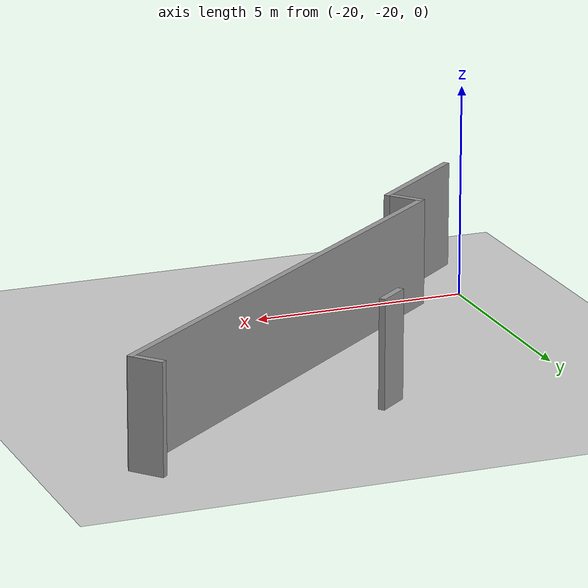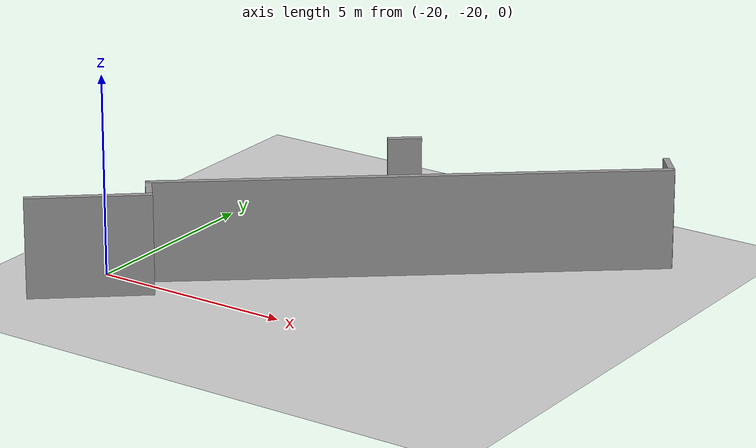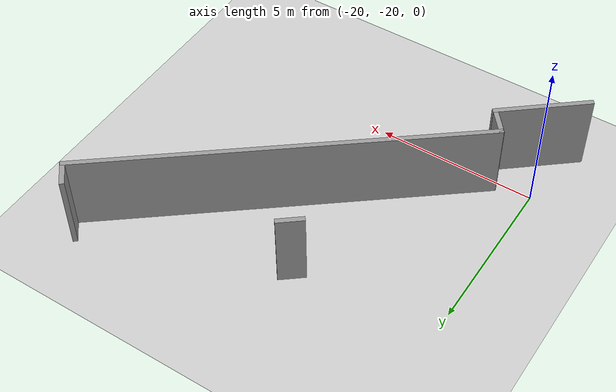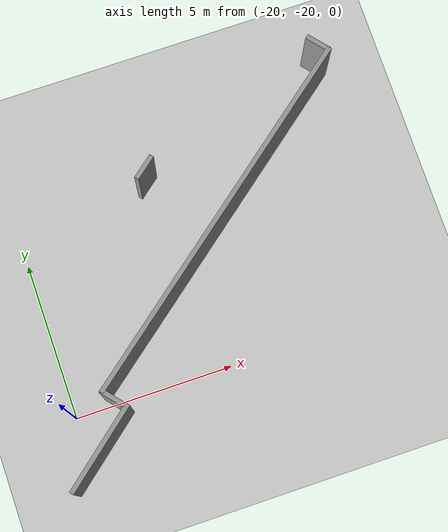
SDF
<sdf version="1.6">
 <world name="default">
  <model name="ground_plane">
   <static>1</static>
   <link name="link">
    <collision name="collision">
     <geometry><plane><normal>0 0 1</normal><size>100 100</size></plane></geometry>
     <surface>
      <contact><collide_bitmask>65535</collide_bitmask></contact>
      <friction><ode><mu>100</mu><mu2>50</mu2></ode></friction>
     </surface>
    </collision>
    <visual name="visual">
     <cast_shadows>0</cast_shadows>
     <geometry><plane><normal>0 0 1</normal><size>100 100</size></plane></geometry>
     <material>
      <script><uri>file://media/materials/scripts/gazebo.material</uri><name>Gazebo/Grey</name></script>
     </material>
    </visual>
   </link>
  </model>
  <model name="wall(0.83)_0_clone_clone">
   <link name="Wall_0">
    <inertial>
     <mass>1</mass>
     <inertia><ixx>1</ixx><ixy>0</ixy><ixz>0</ixz><iyy>1</iyy><iyz>0</iyz><izz>1</izz></inertia>
    </inertial>
    <visual name="Wall_0_Visual">
     <pose>0 0 1.25 0 -0 0</pose>
     <geometry><box><size>0.83 0.15 2.5</size></box></geometry>
     <material>
      <script><uri>file://media/materials/scripts/gazebo.material</uri><name>Gazebo/Grey</name></script>
      <ambient>1 1 1 1</ambient>
      <shader type="vertex"><normal_map>__default__</normal_map></shader>
      <diffuse>0.7 0.7 0.7 1</diffuse>
      <specular>0.01 0.01 0.01 1</specular>
      <emissive>0 0 0 1</emissive>
     </material>
     <meta><layer>0</layer></meta>
    </visual>
    <collision name="Wall_0_Collision">
     <pose>0 0 1.25 0 -0 0</pose>
     <geometry><box><size>2.25 0.15 2.5</size></box></geometry>
     <surface>
      <friction>
       <ode><mu>1</mu><mu2>1</mu2><fdir1>0 0 0</fdir1><slip1>0</slip1><slip2>0</slip2></ode>
       <torsional>
        <coefficient>1</coefficient>
        <patch_radius>0</patch_radius>
        <surface_radius>0</surface_radius>
        <use_patch_radius>1</use_patch_radius>
        <ode><slip>0</slip></ode>
       </torsional>
      </friction>
      <bounce><restitution_coefficient>0</restitution_coefficient><threshold>1e+06</threshold></bounce>
      <contact>
       <collide_without_contact>0</collide_without_contact>
       <collide_without_contact_bitmask>1</collide_without_contact_bitmask>
       <collide_bitmask>1</collide_bitmask>
       <ode>
        <soft_cfm>0</soft_cfm>
        <soft_erp>0.2</soft_erp>
        <kp>1e+13</kp>
        <kd>1</kd>
        <max_vel>0.01</max_vel>
        <min_depth>0</min_depth>
       </ode>
       <bullet>
        <split_impulse>1</split_impulse>
        <split_impulse_penetration_threshold>-0.01</split_impulse_penetration_threshold>
        <soft_cfm>0</soft_cfm>
        <soft_erp>0.2</soft_erp>
        <kp>1e+13</kp>
        <kd>1</kd>
       </bullet>
      </contact>
     </surface>
    </collision>
   </link>
   <static>1</static>
   <pose>-9.43003 -11.7738 0 0 -0 2.26983</pose>
  </model>
  <model name="wall(12.5)_clone">
   <link name="Wall_106">
    <pose>-2.9353 0.017524 0 0 0 -0.005631</pose>
    <inertial>
     <mass>1</mass>
     <inertia><ixx>1</ixx><ixy>0</ixy><ixz>0</ixz><iyy>1</iyy><iyz>0</iyz><izz>1</izz></inertia>
    </inertial>
    <visual name="Wall_106_Visual">
     <pose>0 0 1.25 0 -0 0</pose>
     <geometry><box><size>12.5 0.15 2.5</size></box></geometry>
     <material>
      <script><uri>file://media/materials/scripts/gazebo.material</uri><name>Gazebo/Grey</name></script>
      <ambient>1 1 1 1</ambient>
      <shader type="vertex"><normal_map>__default__</normal_map></shader>
      <diffuse>0.7 0.7 0.7 1</diffuse>
      <specular>0.01 0.01 0.01 1</specular>
      <emissive>0 0 0 1</emissive>
     </material>
     <meta><layer>0</layer></meta>
    </visual>
    <collision name="Wall_106_Collision">
     <pose>0 0 1.25 0 -0 0</pose>
     <geometry><box><size>6.75 0.15 2.5</size></box></geometry>
     <surface>
      <friction>
       <ode><mu>1</mu><mu2>1</mu2><fdir1>0 0 0</fdir1><slip1>0</slip1><slip2>0</slip2></ode>
       <torsional>
        <coefficient>1</coefficient>
        <patch_radius>0</patch_radius>
        <surface_radius>0</surface_radius>
        <use_patch_radius>1</use_patch_radius>
        <ode><slip>0</slip></ode>
       </torsional>
      </friction>
      <bounce><restitution_coefficient>0</restitution_coefficient><threshold>1e+06</threshold></bounce>
      <contact>
       <collide_without_contact>0</collide_without_contact>
       <collide_without_contact_bitmask>1</collide_without_contact_bitmask>
       <collide_bitmask>1</collide_bitmask>
       <ode>
        <soft_cfm>0</soft_cfm>
        <soft_erp>0.2</soft_erp>
        <kp>1e+13</kp>
        <kd>1</kd>
        <max_vel>0.01</max_vel>
        <min_depth>0</min_depth>
       </ode>
       <bullet>
        <split_impulse>1</split_impulse>
        <split_impulse_penetration_threshold>-0.01</split_impulse_penetration_threshold>
        <soft_cfm>0</soft_cfm>
        <soft_erp>0.2</soft_erp>
        <kp>1e+13</kp>
        <kd>1</kd>
       </bullet>
      </contact>
     </surface>
    </collision>
   </link>
   <static>1</static>
   <pose>-11.7429 -14.0693 0 0 -0 0.676604</pose>
  </model>
  <model name="wall(0.83)_0_clone_clone_0">
   <link name="Wall_0">
    <inertial>
     <mass>1</mass>
     <inertia><ixx>1</ixx><ixy>0</ixy><ixz>0</ixz><iyy>1</iyy><iyz>0</iyz><izz>1</izz></inertia>
    </inertial>
    <visual name="Wall_0_Visual">
     <pose>0 0 1.25 0 -0 0</pose>
     <geometry><box><size>0.83 0.15 2.5</size></box></geometry>
     <material>
      <script><uri>file://media/materials/scripts/gazebo.material</uri><name>Gazebo/Grey</name></script>
      <ambient>1 1 1 1</ambient>
      <shader type="vertex"><normal_map>__default__</normal_map></shader>
      <diffuse>0.7 0.7 0.7 1</diffuse>
      <specular>0.01 0.01 0.01 1</specular>
      <emissive>0 0 0 1</emissive>
     </material>
     <meta><layer>0</layer></meta>
    </visual>
    <collision name="Wall_0_Collision">
     <pose>0 0 1.25 0 -0 0</pose>
     <geometry><box><size>2.25 0.15 2.5</size></box></geometry>
     <surface>
      <friction>
       <ode><mu>1</mu><mu2>1</mu2><fdir1>0 0 0</fdir1><slip1>0</slip1><slip2>0</slip2></ode>
       <torsional>
        <coefficient>1</coefficient>
        <patch_radius>0</patch_radius>
        <surface_radius>0</surface_radius>
        <use_patch_radius>1</use_patch_radius>
        <ode><slip>0</slip></ode>
       </torsional>
      </friction>
      <bounce><restitution_coefficient>0</restitution_coefficient><threshold>1e+06</threshold></bounce>
      <contact>
       <collide_without_contact>0</collide_without_contact>
       <collide_without_contact_bitmask>1</collide_without_contact_bitmask>
       <collide_bitmask>1</collide_bitmask>
       <ode>
        <soft_cfm>0</soft_cfm>
        <soft_erp>0.2</soft_erp>
        <kp>1e+13</kp>
        <kd>1</kd>
        <max_vel>0.01</max_vel>
        <min_depth>0</min_depth>
       </ode>
       <bullet>
        <split_impulse>1</split_impulse>
        <split_impulse_penetration_threshold>-0.01</split_impulse_penetration_threshold>
        <soft_cfm>0</soft_cfm>
        <soft_erp>0.2</soft_erp>
        <kp>1e+13</kp>
        <kd>1</kd>
       </bullet>
      </contact>
     </surface>
    </collision>
   </link>
   <static>1</static>
   <pose>-15.6578 -13.7679 0 0 -0 0.678455</pose>
  </model>
  <model name="wall(0.83)_0_clone_0">
   <link name="Wall_0">
    <inertial>
     <mass>1</mass>
     <inertia><ixx>1</ixx><ixy>0</ixy><ixz>0</ixz><iyy>1</iyy><iyz>0</iyz><izz>1</izz></inertia>
    </inertial>
    <visual name="Wall_0_Visual">
     <pose>0 0 1.25 0 -0 0</pose>
     <geometry><box><size>0.83 0.15 2.5</size></box></geometry>
     <material>
      <script><uri>file://media/materials/scripts/gazebo.material</uri><name>Gazebo/Grey</name></script>
      <ambient>1 1 1 1</ambient>
      <shader type="vertex"><normal_map>__default__</normal_map></shader>
      <diffuse>0.7 0.7 0.7 1</diffuse>
      <specular>0.01 0.01 0.01 1</specular>
      <emissive>0 0 0 1</emissive>
     </material>
     <meta><layer>0</layer></meta>
    </visual>
    <collision name="Wall_0_Collision">
     <pose>0 0 1.25 0 -0 0</pose>
     <geometry><box><size>2.25 0.15 2.5</size></box></geometry>
     <surface>
      <friction>
       <ode><mu>1</mu><mu2>1</mu2><fdir1>0 0 0</fdir1><slip1>0</slip1><slip2>0</slip2></ode>
       <torsional>
        <coefficient>1</coefficient>
        <patch_radius>0</patch_radius>
        <surface_radius>0</surface_radius>
        <use_patch_radius>1</use_patch_radius>
        <ode><slip>0</slip></ode>
       </torsional>
      </friction>
      <bounce><restitution_coefficient>0</restitution_coefficient><threshold>1e+06</threshold></bounce>
      <contact>
       <collide_without_contact>0</collide_without_contact>
       <collide_without_contact_bitmask>1</collide_without_contact_bitmask>
       <collide_bitmask>1</collide_bitmask>
       <ode>
        <soft_cfm>0</soft_cfm>
        <soft_erp>0.2</soft_erp>
        <kp>1e+13</kp>
        <kd>1</kd>
        <max_vel>0.01</max_vel>
        <min_depth>0</min_depth>
       </ode>
       <bullet>
        <split_impulse>1</split_impulse>
        <split_impulse_penetration_threshold>-0.01</split_impulse_penetration_threshold>
        <soft_cfm>0</soft_cfm>
        <soft_erp>0.2</soft_erp>
        <kp>1e+13</kp>
        <kd>1</kd>
       </bullet>
      </contact>
     </surface>
    </collision>
   </link>
   <static>1</static>
   <pose>-18.6694 -20.0115 0 0 0 -0.880889</pose>
  </model>
  <model name="wall(3)_1">
   <link name="Wall_106">
    <pose>-2.9353 0.017524 0 0 0 -0.005631</pose>
    <inertial>
     <mass>1</mass>
     <inertia><ixx>1</ixx><ixy>0</ixy><ixz>0</ixz><iyy>1</iyy><iyz>0</iyz><izz>1</izz></inertia>
    </inertial>
    <visual name="Wall_106_Visual">
     <pose>0 0 1.25 0 -0 0</pose>
     <geometry><box><size>3 0.15 2.5</size></box></geometry>
     <material>
      <script><uri>file://media/materials/scripts/gazebo.material</uri><name>Gazebo/Grey</name></script>
      <ambient>1 1 1 1</ambient>
      <shader type="vertex"><normal_map>__default__</normal_map></shader>
      <diffuse>0.7 0.7 0.7 1</diffuse>
      <specular>0.01 0.01 0.01 1</specular>
      <emissive>0 0 0 1</emissive>
     </material>
     <meta><layer>0</layer></meta>
    </visual>
    <collision name="Wall_106_Collision">
     <pose>0 0 1.25 0 -0 0</pose>
     <geometry><box><size>6.75 0.15 2.5</size></box></geometry>
     <surface>
      <friction>
       <ode><mu>1</mu><mu2>1</mu2><fdir1>0 0 0</fdir1><slip1>0</slip1><slip2>0</slip2></ode>
       <torsional>
        <coefficient>1</coefficient>
        <patch_radius>0</patch_radius>
        <surface_radius>0</surface_radius>
        <use_patch_radius>1</use_patch_radius>
        <ode><slip>0</slip></ode>
       </torsional>
      </friction>
      <bounce><restitution_coefficient>0</restitution_coefficient><threshold>1e+06</threshold></bounce>
      <contact>
       <collide_without_contact>0</collide_without_contact>
       <collide_without_contact_bitmask>1</collide_without_contact_bitmask>
       <collide_bitmask>1</collide_bitmask>
       <ode>
        <soft_cfm>0</soft_cfm>
        <soft_erp>0.2</soft_erp>
        <kp>1e+13</kp>
        <kd>1</kd>
        <max_vel>0.01</max_vel>
        <min_depth>0</min_depth>
       </ode>
       <bullet>
        <split_impulse>1</split_impulse>
        <split_impulse_penetration_threshold>-0.01</split_impulse_penetration_threshold>
        <soft_cfm>0</soft_cfm>
        <soft_erp>0.2</soft_erp>
        <kp>1e+13</kp>
        <kd>1</kd>
       </bullet>
      </contact>
     </surface>
    </collision>
   </link>
   <static>1</static>
   <pose>-17.1928 -19.4205 0 0 -0 0.695306</pose>
  </model>
 </world>
</sdf>
